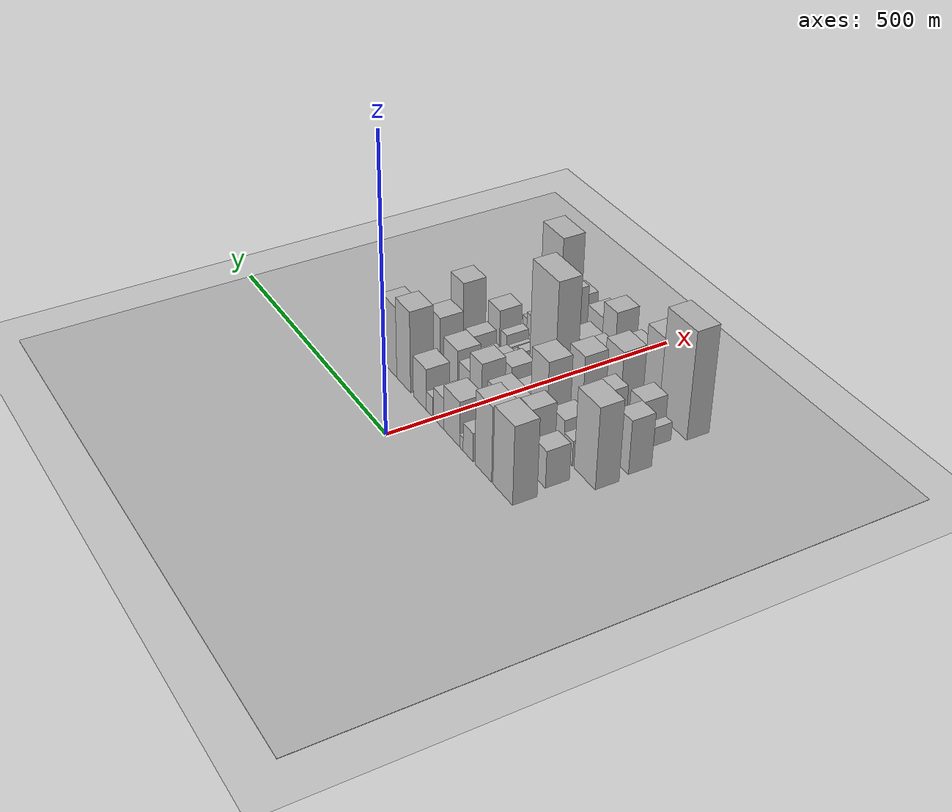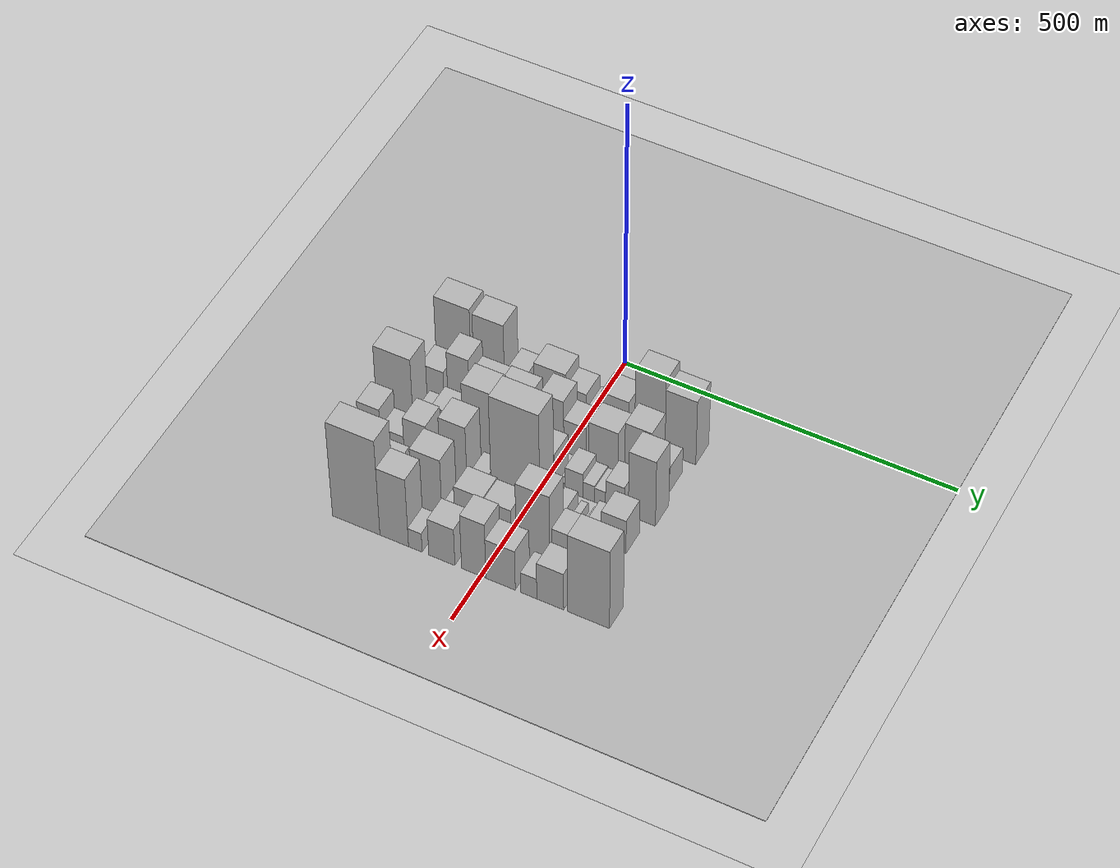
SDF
<sdf version="1.6">
 <world name="default">
  <include><name>ground_plane_1</name><uri>model://HANNAS_ground_plane</uri></include>
  <include>
   <name>ground_plane_2</name>
   <uri>model://HANNAS_ground_plane</uri>
   <pose>100 0 0  0 0 0</pose>
  </include>
  <model name="building_23">
   <static>1</static>
   <pose>100.0000 -203.5561 0 0.000000 0.000000 0.000000</pose>
   <link name="link">
    <pose>0 0 69.00 0 0 0</pose>
    <collision name="collision"><geometry><box><size>40.0000 54.8445 138.0000</size></box></geometry></collision>
    <visual name="visual">
     <cast_shadows>0</cast_shadows>
     <geometry><box><size>40.0000 54.8445 138.0000</size></box></geometry>
     <material>
      <script>
       <uri>model://HANNAS_wall/materials/scripts</uri>
       <uri>model://HANNAS_wall/materials/textures</uri>
       <name>vrc/HANNAS_wall</name>
      </script>
     </material>
    </visual>
   </link>
  </model>
  <model name="building_24">
   <static>1</static>
   <pose>100.0000 -148.3149 0 0.000000 0.000000 0.000000</pose>
   <link name="link">
    <pose>0 0 66.00 0 0 0</pose>
    <collision name="collision"><geometry><box><size>40.0000 47.6379 132.0000</size></box></geometry></collision>
    <visual name="visual">
     <cast_shadows>0</cast_shadows>
     <geometry><box><size>40.0000 47.6379 132.0000</size></box></geometry>
     <material>
      <script>
       <uri>model://HANNAS_wall/materials/scripts</uri>
       <uri>model://HANNAS_wall/materials/textures</uri>
       <name>vrc/HANNAS_wall</name>
      </script>
     </material>
    </visual>
   </link>
  </model>
  <model name="building_25">
   <static>1</static>
   <pose>100.0000 -103.8084 0 0.000000 0.000000 0.000000</pose>
   <link name="link">
    <pose>0 0 25.50 0 0 0</pose>
    <collision name="collision"><geometry><box><size>40.0000 29.3752 51.0000</size></box></geometry></collision>
    <visual name="visual">
     <cast_shadows>0</cast_shadows>
     <geometry><box><size>40.0000 29.3752 51.0000</size></box></geometry>
     <material>
      <script>
       <uri>model://HANNAS_wall/materials/scripts</uri>
       <uri>model://HANNAS_wall/materials/textures</uri>
       <name>vrc/HANNAS_wall</name>
      </script>
     </material>
    </visual>
   </link>
  </model>
  <model name="building_26">
   <static>1</static>
   <pose>100.0000 -83.8414 0 0.000000 0.000000 0.000000</pose>
   <link name="link">
    <pose>0 0 12.00 0 0 0</pose>
    <collision name="collision"><geometry><box><size>40.0000 10.5588 24.0000</size></box></geometry></collision>
    <visual name="visual">
     <cast_shadows>0</cast_shadows>
     <geometry><box><size>40.0000 10.5588 24.0000</size></box></geometry>
     <material>
      <script>
       <uri>model://HANNAS_wall/materials/scripts</uri>
       <uri>model://HANNAS_wall/materials/textures</uri>
       <name>vrc/HANNAS_wall</name>
      </script>
     </material>
    </visual>
   </link>
  </model>
  <model name="building_27">
   <static>1</static>
   <pose>100.0000 -54.4065 0 0.000000 0.000000 0.000000</pose>
   <link name="link">
    <pose>0 0 40.50 0 0 0</pose>
    <collision name="collision"><geometry><box><size>40.0000 48.3110 81.0000</size></box></geometry></collision>
    <visual name="visual">
     <cast_shadows>0</cast_shadows>
     <geometry><box><size>40.0000 48.3110 81.0000</size></box></geometry>
     <material>
      <script>
       <uri>model://HANNAS_wall/materials/scripts</uri>
       <uri>model://HANNAS_wall/materials/textures</uri>
       <name>vrc/HANNAS_wall</name>
      </script>
     </material>
    </visual>
   </link>
  </model>
  <model name="building_28">
   <static>1</static>
   <pose>100.0000 -14.4142 0 0.000000 0.000000 0.000000</pose>
   <link name="link">
    <pose>0 0 28.50 0 0 0</pose>
    <collision name="collision"><geometry><box><size>40.0000 31.6736 57.0000</size></box></geometry></collision>
    <visual name="visual">
     <cast_shadows>0</cast_shadows>
     <geometry><box><size>40.0000 31.6736 57.0000</size></box></geometry>
     <material>
      <script>
       <uri>model://HANNAS_wall/materials/scripts</uri>
       <uri>model://HANNAS_wall/materials/textures</uri>
       <name>vrc/HANNAS_wall</name>
      </script>
     </material>
    </visual>
   </link>
  </model>
  <model name="building_29">
   <static>1</static>
   <pose>100.0000 14.0344 0 0.000000 0.000000 0.000000</pose>
   <link name="link">
    <pose>0 0 18.00 0 0 0</pose>
    <collision name="collision"><geometry><box><size>40.0000 19.2237 36.0000</size></box></geometry></collision>
    <visual name="visual">
     <cast_shadows>0</cast_shadows>
     <geometry><box><size>40.0000 19.2237 36.0000</size></box></geometry>
     <material>
      <script>
       <uri>model://HANNAS_wall/materials/scripts</uri>
       <uri>model://HANNAS_wall/materials/textures</uri>
       <name>vrc/HANNAS_wall</name>
      </script>
     </material>
    </visual>
   </link>
  </model>
  <model name="building_30">
   <static>1</static>
   <pose>100.0000 44.7785 0 0.000000 0.000000 0.000000</pose>
   <link name="link">
    <pose>0 0 37.50 0 0 0</pose>
    <collision name="collision"><geometry><box><size>40.0000 42.2645 75.0000</size></box></geometry></collision>
    <visual name="visual">
     <cast_shadows>0</cast_shadows>
     <geometry><box><size>40.0000 42.2645 75.0000</size></box></geometry>
     <material>
      <script>
       <uri>model://HANNAS_wall/materials/scripts</uri>
       <uri>model://HANNAS_wall/materials/textures</uri>
       <name>vrc/HANNAS_wall</name>
      </script>
     </material>
    </visual>
   </link>
  </model>
  <model name="building_31">
   <static>1</static>
   <pose>100.0000 97.7026 0 0.000000 0.000000 0.000000</pose>
   <link name="link">
    <pose>0 0 73.50 0 0 0</pose>
    <collision name="collision"><geometry><box><size>40.0000 45.5837 147.0000</size></box></geometry></collision>
    <visual name="visual">
     <cast_shadows>0</cast_shadows>
     <geometry><box><size>40.0000 45.5837 147.0000</size></box></geometry>
     <material>
      <script>
       <uri>model://HANNAS_wall/materials/scripts</uri>
       <uri>model://HANNAS_wall/materials/textures</uri>
       <name>vrc/HANNAS_wall</name>
      </script>
     </material>
    </visual>
   </link>
  </model>
  <model name="building_32">
   <static>1</static>
   <pose>100.0000 143.7222 0 0.000000 0.000000 0.000000</pose>
   <link name="link">
    <pose>0 0 64.50 0 0 0</pose>
    <collision name="collision"><geometry><box><size>40.0000 46.4555 129.0000</size></box></geometry></collision>
    <visual name="visual">
     <cast_shadows>0</cast_shadows>
     <geometry><box><size>40.0000 46.4555 129.0000</size></box></geometry>
     <material>
      <script>
       <uri>model://HANNAS_wall/materials/scripts</uri>
       <uri>model://HANNAS_wall/materials/textures</uri>
       <name>vrc/HANNAS_wall</name>
      </script>
     </material>
    </visual>
   </link>
  </model>
  <model name="building_79">
   <static>1</static>
   <pose>160.0000 -203.1343 0 0.000000 0.000000 0.000000</pose>
   <link name="link">
    <pose>0 0 33.00 0 0 0</pose>
    <collision name="collision"><geometry><box><size>40.0000 34.5544 66.0000</size></box></geometry></collision>
    <visual name="visual">
     <cast_shadows>0</cast_shadows>
     <geometry><box><size>40.0000 34.5544 66.0000</size></box></geometry>
     <material>
      <script>
       <uri>model://HANNAS_wall/materials/scripts</uri>
       <uri>model://HANNAS_wall/materials/textures</uri>
       <name>vrc/HANNAS_wall</name>
      </script>
     </material>
    </visual>
   </link>
  </model>
  <model name="building_80">
   <static>1</static>
   <pose>160.0000 -162.9978 0 0.000000 0.000000 0.000000</pose>
   <link name="link">
    <pose>0 0 55.50 0 0 0</pose>
    <collision name="collision"><geometry><box><size>40.0000 33.7186 111.0000</size></box></geometry></collision>
    <visual name="visual">
     <cast_shadows>0</cast_shadows>
     <geometry><box><size>40.0000 33.7186 111.0000</size></box></geometry>
     <material>
      <script>
       <uri>model://HANNAS_wall/materials/scripts</uri>
       <uri>model://HANNAS_wall/materials/textures</uri>
       <name>vrc/HANNAS_wall</name>
      </script>
     </material>
    </visual>
   </link>
  </model>
  <model name="building_81">
   <static>1</static>
   <pose>160.0000 -123.7982 0 0.000000 0.000000 0.000000</pose>
   <link name="link">
    <pose>0 0 40.50 0 0 0</pose>
    <collision name="collision"><geometry><box><size>40.0000 44.6806 81.0000</size></box></geometry></collision>
    <visual name="visual">
     <cast_shadows>0</cast_shadows>
     <geometry><box><size>40.0000 44.6806 81.0000</size></box></geometry>
     <material>
      <script>
       <uri>model://HANNAS_wall/materials/scripts</uri>
       <uri>model://HANNAS_wall/materials/textures</uri>
       <name>vrc/HANNAS_wall</name>
      </script>
     </material>
    </visual>
   </link>
  </model>
  <model name="building_82">
   <static>1</static>
   <pose>160.0000 -77.8665 0 0.000000 0.000000 0.000000</pose>
   <link name="link">
    <pose>0 0 42.00 0 0 0</pose>
    <collision name="collision"><geometry><box><size>40.0000 47.1828 84.0000</size></box></geometry></collision>
    <visual name="visual">
     <cast_shadows>0</cast_shadows>
     <geometry><box><size>40.0000 47.1828 84.0000</size></box></geometry>
     <material>
      <script>
       <uri>model://HANNAS_wall/materials/scripts</uri>
       <uri>model://HANNAS_wall/materials/textures</uri>
       <name>vrc/HANNAS_wall</name>
      </script>
     </material>
    </visual>
   </link>
  </model>
  <model name="building_83">
   <static>1</static>
   <pose>160.0000 -45.9509 0 0.000000 0.000000 0.000000</pose>
   <link name="link">
    <pose>0 0 15.00 0 0 0</pose>
    <collision name="collision"><geometry><box><size>40.0000 16.6484 30.0000</size></box></geometry></collision>
    <visual name="visual">
     <cast_shadows>0</cast_shadows>
     <geometry><box><size>40.0000 16.6484 30.0000</size></box></geometry>
     <material>
      <script>
       <uri>model://HANNAS_wall/materials/scripts</uri>
       <uri>model://HANNAS_wall/materials/textures</uri>
       <name>vrc/HANNAS_wall</name>
      </script>
     </material>
    </visual>
   </link>
  </model>
  <model name="building_84">
   <static>1</static>
   <pose>160.0000 -19.8126 0 0.000000 0.000000 0.000000</pose>
   <link name="link">
    <pose>0 0 51.00 0 0 0</pose>
    <collision name="collision"><geometry><box><size>40.0000 35.6282 102.0000</size></box></geometry></collision>
    <visual name="visual">
     <cast_shadows>0</cast_shadows>
     <geometry><box><size>40.0000 35.6282 102.0000</size></box></geometry>
     <material>
      <script>
       <uri>model://HANNAS_wall/materials/scripts</uri>
       <uri>model://HANNAS_wall/materials/textures</uri>
       <name>vrc/HANNAS_wall</name>
      </script>
     </material>
    </visual>
   </link>
  </model>
  <model name="building_85">
   <static>1</static>
   <pose>160.0000 14.9345 0 0.000000 0.000000 0.000000</pose>
   <link name="link">
    <pose>0 0 33.00 0 0 0</pose>
    <collision name="collision"><geometry><box><size>40.0000 33.8661 66.0000</size></box></geometry></collision>
    <visual name="visual">
     <cast_shadows>0</cast_shadows>
     <geometry><box><size>40.0000 33.8661 66.0000</size></box></geometry>
     <material>
      <script>
       <uri>model://HANNAS_wall/materials/scripts</uri>
       <uri>model://HANNAS_wall/materials/textures</uri>
       <name>vrc/HANNAS_wall</name>
      </script>
     </material>
    </visual>
   </link>
  </model>
  <model name="building_86">
   <static>1</static>
   <pose>160.0000 58.0895 0 0.000000 0.000000 0.000000</pose>
   <link name="link">
    <pose>0 0 40.50 0 0 0</pose>
    <collision name="collision"><geometry><box><size>40.0000 44.4440 81.0000</size></box></geometry></collision>
    <visual name="visual">
     <cast_shadows>0</cast_shadows>
     <geometry><box><size>40.0000 44.4440 81.0000</size></box></geometry>
     <material>
      <script>
       <uri>model://HANNAS_wall/materials/scripts</uri>
       <uri>model://HANNAS_wall/materials/textures</uri>
       <name>vrc/HANNAS_wall</name>
      </script>
     </material>
    </visual>
   </link>
  </model>
  <model name="building_87">
   <static>1</static>
   <pose>160.0000 110.2341 0 0.000000 0.000000 0.000000</pose>
   <link name="link">
    <pose>0 0 54.00 0 0 0</pose>
    <collision name="collision"><geometry><box><size>40.0000 39.8451 108.0000</size></box></geometry></collision>
    <visual name="visual">
     <cast_shadows>0</cast_shadows>
     <geometry><box><size>40.0000 39.8451 108.0000</size></box></geometry>
     <material>
      <script>
       <uri>model://HANNAS_wall/materials/scripts</uri>
       <uri>model://HANNAS_wall/materials/textures</uri>
       <name>vrc/HANNAS_wall</name>
      </script>
     </material>
    </visual>
   </link>
  </model>
  <model name="building_88">
   <static>1</static>
   <pose>160.0000 143.5494 0 0.000000 0.000000 0.000000</pose>
   <link name="link">
    <pose>0 0 25.50 0 0 0</pose>
    <collision name="collision"><geometry><box><size>40.0000 26.7856 51.0000</size></box></geometry></collision>
    <visual name="visual">
     <cast_shadows>0</cast_shadows>
     <geometry><box><size>40.0000 26.7856 51.0000</size></box></geometry>
     <material>
      <script>
       <uri>model://HANNAS_wall/materials/scripts</uri>
       <uri>model://HANNAS_wall/materials/textures</uri>
       <name>vrc/HANNAS_wall</name>
      </script>
     </material>
    </visual>
   </link>
  </model>
  <model name="building_134">
   <static>1</static>
   <pose>220.0000 -229.0672 0 0.000000 0.000000 0.000000</pose>
   <link name="link">
    <pose>0 0 72.00 0 0 0</pose>
    <collision name="collision"><geometry><box><size>40.0000 56.5603 144.0000</size></box></geometry></collision>
    <visual name="visual">
     <cast_shadows>0</cast_shadows>
     <geometry><box><size>40.0000 56.5603 144.0000</size></box></geometry>
     <material>
      <script>
       <uri>model://HANNAS_wall/materials/scripts</uri>
       <uri>model://HANNAS_wall/materials/textures</uri>
       <name>vrc/HANNAS_wall</name>
      </script>
     </material>
    </visual>
   </link>
  </model>
  <model name="building_135">
   <static>1</static>
   <pose>220.0000 -183.6603 0 0.000000 0.000000 0.000000</pose>
   <link name="link">
    <pose>0 0 22.50 0 0 0</pose>
    <collision name="collision"><geometry><box><size>40.0000 24.2533 45.0000</size></box></geometry></collision>
    <visual name="visual">
     <cast_shadows>0</cast_shadows>
     <geometry><box><size>40.0000 24.2533 45.0000</size></box></geometry>
     <material>
      <script>
       <uri>model://HANNAS_wall/materials/scripts</uri>
       <uri>model://HANNAS_wall/materials/textures</uri>
       <name>vrc/HANNAS_wall</name>
      </script>
     </material>
    </visual>
   </link>
  </model>
  <model name="building_136">
   <static>1</static>
   <pose>220.0000 -152.7393 0 0.000000 0.000000 0.000000</pose>
   <link name="link">
    <pose>0 0 33.00 0 0 0</pose>
    <collision name="collision"><geometry><box><size>40.0000 37.5887 66.0000</size></box></geometry></collision>
    <visual name="visual">
     <cast_shadows>0</cast_shadows>
     <geometry><box><size>40.0000 37.5887 66.0000</size></box></geometry>
     <material>
      <script>
       <uri>model://HANNAS_wall/materials/scripts</uri>
       <uri>model://HANNAS_wall/materials/textures</uri>
       <name>vrc/HANNAS_wall</name>
      </script>
     </material>
    </visual>
   </link>
  </model>
  <model name="building_137">
   <static>1</static>
   <pose>220.0000 -100.8049 0 0.000000 0.000000 0.000000</pose>
   <link name="link">
    <pose>0 0 69.00 0 0 0</pose>
    <collision name="collision"><geometry><box><size>40.0000 46.2803 138.0000</size></box></geometry></collision>
    <visual name="visual">
     <cast_shadows>0</cast_shadows>
     <geometry><box><size>40.0000 46.2803 138.0000</size></box></geometry>
     <material>
      <script>
       <uri>model://HANNAS_wall/materials/scripts</uri>
       <uri>model://HANNAS_wall/materials/textures</uri>
       <name>vrc/HANNAS_wall</name>
      </script>
     </material>
    </visual>
   </link>
  </model>
  <model name="building_138">
   <static>1</static>
   <pose>220.0000 -58.5885 0 0.000000 0.000000 0.000000</pose>
   <link name="link">
    <pose>0 0 18.00 0 0 0</pose>
    <collision name="collision"><geometry><box><size>40.0000 18.1525 36.0000</size></box></geometry></collision>
    <visual name="visual">
     <cast_shadows>0</cast_shadows>
     <geometry><box><size>40.0000 18.1525 36.0000</size></box></geometry>
     <material>
      <script>
       <uri>model://HANNAS_wall/materials/scripts</uri>
       <uri>model://HANNAS_wall/materials/textures</uri>
       <name>vrc/HANNAS_wall</name>
      </script>
     </material>
    </visual>
   </link>
  </model>
  <model name="building_139">
   <static>1</static>
   <pose>220.0000 -33.2629 0 0.000000 0.000000 0.000000</pose>
   <link name="link">
    <pose>0 0 21.00 0 0 0</pose>
    <collision name="collision"><geometry><box><size>40.0000 22.4988 42.0000</size></box></geometry></collision>
    <visual name="visual">
     <cast_shadows>0</cast_shadows>
     <geometry><box><size>40.0000 22.4988 42.0000</size></box></geometry>
     <material>
      <script>
       <uri>model://HANNAS_wall/materials/scripts</uri>
       <uri>model://HANNAS_wall/materials/textures</uri>
       <name>vrc/HANNAS_wall</name>
      </script>
     </material>
    </visual>
   </link>
  </model>
  <model name="building_140">
   <static>1</static>
   <pose>220.0000 -3.2694 0 0.000000 0.000000 0.000000</pose>
   <link name="link">
    <pose>0 0 33.00 0 0 0</pose>
    <collision name="collision"><geometry><box><size>40.0000 37.4882 66.0000</size></box></geometry></collision>
    <visual name="visual">
     <cast_shadows>0</cast_shadows>
     <geometry><box><size>40.0000 37.4882 66.0000</size></box></geometry>
     <material>
      <script>
       <uri>model://HANNAS_wall/materials/scripts</uri>
       <uri>model://HANNAS_wall/materials/textures</uri>
       <name>vrc/HANNAS_wall</name>
      </script>
     </material>
    </visual>
   </link>
  </model>
  <model name="building_141">
   <static>1</static>
   <pose>220.0000 27.8396 0 0.000000 0.000000 0.000000</pose>
   <link name="link">
    <pose>0 0 7.50 0 0 0</pose>
    <collision name="collision"><geometry><box><size>40.0000 6.7298 15.0000</size></box></geometry></collision>
    <visual name="visual">
     <cast_shadows>0</cast_shadows>
     <geometry><box><size>40.0000 6.7298 15.0000</size></box></geometry>
     <material>
      <script>
       <uri>model://HANNAS_wall/materials/scripts</uri>
       <uri>model://HANNAS_wall/materials/textures</uri>
       <name>vrc/HANNAS_wall</name>
      </script>
     </material>
    </visual>
   </link>
  </model>
  <model name="building_142">
   <static>1</static>
   <pose>220.0000 44.4099 0 0.000000 0.000000 0.000000</pose>
   <link name="link">
    <pose>0 0 24.00 0 0 0</pose>
    <collision name="collision"><geometry><box><size>40.0000 26.4106 48.0000</size></box></geometry></collision>
    <visual name="visual">
     <cast_shadows>0</cast_shadows>
     <geometry><box><size>40.0000 26.4106 48.0000</size></box></geometry>
     <material>
      <script>
       <uri>model://HANNAS_wall/materials/scripts</uri>
       <uri>model://HANNAS_wall/materials/textures</uri>
       <name>vrc/HANNAS_wall</name>
      </script>
     </material>
    </visual>
   </link>
  </model>
  <model name="building_143">
   <static>1</static>
   <pose>220.0000 66.5911 0 0.000000 0.000000 0.000000</pose>
   <link name="link">
    <pose>0 0 16.50 0 0 0</pose>
    <collision name="collision"><geometry><box><size>40.0000 17.9517 33.0000</size></box></geometry></collision>
    <visual name="visual">
     <cast_shadows>0</cast_shadows>
     <geometry><box><size>40.0000 17.9517 33.0000</size></box></geometry>
     <material>
      <script>
       <uri>model://HANNAS_wall/materials/scripts</uri>
       <uri>model://HANNAS_wall/materials/textures</uri>
       <name>vrc/HANNAS_wall</name>
      </script>
     </material>
    </visual>
   </link>
  </model>
  <model name="building_144">
   <static>1</static>
   <pose>220.0000 83.6626 0 0.000000 0.000000 0.000000</pose>
   <link name="link">
    <pose>0 0 15.00 0 0 0</pose>
    <collision name="collision"><geometry><box><size>40.0000 16.1914 30.0000</size></box></geometry></collision>
    <visual name="visual">
     <cast_shadows>0</cast_shadows>
     <geometry><box><size>40.0000 16.1914 30.0000</size></box></geometry>
     <material>
      <script>
       <uri>model://HANNAS_wall/materials/scripts</uri>
       <uri>model://HANNAS_wall/materials/textures</uri>
       <name>vrc/HANNAS_wall</name>
      </script>
     </material>
    </visual>
   </link>
  </model>
  <model name="building_145">
   <static>1</static>
   <pose>220.0000 105.7964 0 0.000000 0.000000 0.000000</pose>
   <link name="link">
    <pose>0 0 27.00 0 0 0</pose>
    <collision name="collision"><geometry><box><size>40.0000 28.0761 54.0000</size></box></geometry></collision>
    <visual name="visual">
     <cast_shadows>0</cast_shadows>
     <geometry><box><size>40.0000 28.0761 54.0000</size></box></geometry>
     <material>
      <script>
       <uri>model://HANNAS_wall/materials/scripts</uri>
       <uri>model://HANNAS_wall/materials/textures</uri>
       <name>vrc/HANNAS_wall</name>
      </script>
     </material>
    </visual>
   </link>
  </model>
  <model name="building_146">
   <static>1</static>
   <pose>220.0000 145.9951 0 0.000000 0.000000 0.000000</pose>
   <link name="link">
    <pose>0 0 66.00 0 0 0</pose>
    <collision name="collision"><geometry><box><size>40.0000 40.3213 132.0000</size></box></geometry></collision>
    <visual name="visual">
     <cast_shadows>0</cast_shadows>
     <geometry><box><size>40.0000 40.3213 132.0000</size></box></geometry>
     <material>
      <script>
       <uri>model://HANNAS_wall/materials/scripts</uri>
       <uri>model://HANNAS_wall/materials/textures</uri>
       <name>vrc/HANNAS_wall</name>
      </script>
     </material>
    </visual>
   </link>
  </model>
  <model name="building_188">
   <static>1</static>
   <pose>280.0000 -233.9163 0 0.000000 0.000000 0.000000</pose>
   <link name="link">
    <pose>0 0 48.00 0 0 0</pose>
    <collision name="collision"><geometry><box><size>40.0000 34.2539 96.0000</size></box></geometry></collision>
    <visual name="visual">
     <cast_shadows>0</cast_shadows>
     <geometry><box><size>40.0000 34.2539 96.0000</size></box></geometry>
     <material>
      <script>
       <uri>model://HANNAS_wall/materials/scripts</uri>
       <uri>model://HANNAS_wall/materials/textures</uri>
       <name>vrc/HANNAS_wall</name>
      </script>
     </material>
    </visual>
   </link>
  </model>
  <model name="building_189">
   <static>1</static>
   <pose>280.0000 -198.8603 0 0.000000 0.000000 0.000000</pose>
   <link name="link">
    <pose>0 0 30.00 0 0 0</pose>
    <collision name="collision"><geometry><box><size>40.0000 35.8582 60.0000</size></box></geometry></collision>
    <visual name="visual">
     <cast_shadows>0</cast_shadows>
     <geometry><box><size>40.0000 35.8582 60.0000</size></box></geometry>
     <material>
      <script>
       <uri>model://HANNAS_wall/materials/scripts</uri>
       <uri>model://HANNAS_wall/materials/textures</uri>
       <name>vrc/HANNAS_wall</name>
      </script>
     </material>
    </visual>
   </link>
  </model>
  <model name="building_190">
   <static>1</static>
   <pose>280.0000 -163.6658 0 0.000000 0.000000 0.000000</pose>
   <link name="link">
    <pose>0 0 49.50 0 0 0</pose>
    <collision name="collision"><geometry><box><size>40.0000 34.5308 99.0000</size></box></geometry></collision>
    <visual name="visual">
     <cast_shadows>0</cast_shadows>
     <geometry><box><size>40.0000 34.5308 99.0000</size></box></geometry>
     <material>
      <script>
       <uri>model://HANNAS_wall/materials/scripts</uri>
       <uri>model://HANNAS_wall/materials/textures</uri>
       <name>vrc/HANNAS_wall</name>
      </script>
     </material>
    </visual>
   </link>
  </model>
  <model name="building_191">
   <static>1</static>
   <pose>280.0000 -132.2129 0 0.000000 0.000000 0.000000</pose>
   <link name="link">
    <pose>0 0 13.50 0 0 0</pose>
    <collision name="collision"><geometry><box><size>40.0000 12.3750 27.0000</size></box></geometry></collision>
    <visual name="visual">
     <cast_shadows>0</cast_shadows>
     <geometry><box><size>40.0000 12.3750 27.0000</size></box></geometry>
     <material>
      <script>
       <uri>model://HANNAS_wall/materials/scripts</uri>
       <uri>model://HANNAS_wall/materials/textures</uri>
       <name>vrc/HANNAS_wall</name>
      </script>
     </material>
    </visual>
   </link>
  </model>
  <model name="building_192">
   <static>1</static>
   <pose>280.0000 -105.7558 0 0.000000 0.000000 0.000000</pose>
   <link name="link">
    <pose>0 0 64.50 0 0 0</pose>
    <collision name="collision"><geometry><box><size>40.0000 40.5392 129.0000</size></box></geometry></collision>
    <visual name="visual">
     <cast_shadows>0</cast_shadows>
     <geometry><box><size>40.0000 40.5392 129.0000</size></box></geometry>
     <material>
      <script>
       <uri>model://HANNAS_wall/materials/scripts</uri>
       <uri>model://HANNAS_wall/materials/textures</uri>
       <name>vrc/HANNAS_wall</name>
      </script>
     </material>
    </visual>
   </link>
  </model>
  <model name="building_193">
   <static>1</static>
   <pose>280.0000 -68.1076 0 0.000000 0.000000 0.000000</pose>
   <link name="link">
    <pose>0 0 21.00 0 0 0</pose>
    <collision name="collision"><geometry><box><size>40.0000 24.7573 42.0000</size></box></geometry></collision>
    <visual name="visual">
     <cast_shadows>0</cast_shadows>
     <geometry><box><size>40.0000 24.7573 42.0000</size></box></geometry>
     <material>
      <script>
       <uri>model://HANNAS_wall/materials/scripts</uri>
       <uri>model://HANNAS_wall/materials/textures</uri>
       <name>vrc/HANNAS_wall</name>
      </script>
     </material>
    </visual>
   </link>
  </model>
  <model name="building_194">
   <static>1</static>
   <pose>280.0000 -11.9997 0 0.000000 0.000000 0.000000</pose>
   <link name="link">
    <pose>0 0 106.50 0 0 0</pose>
    <collision name="collision"><geometry><box><size>40.0000 73.4585 213.0000</size></box></geometry></collision>
    <visual name="visual">
     <cast_shadows>0</cast_shadows>
     <geometry><box><size>40.0000 73.4585 213.0000</size></box></geometry>
     <material>
      <script>
       <uri>model://HANNAS_wall/materials/scripts</uri>
       <uri>model://HANNAS_wall/materials/textures</uri>
       <name>vrc/HANNAS_wall</name>
      </script>
     </material>
    </visual>
   </link>
  </model>
  <model name="building_195">
   <static>1</static>
   <pose>280.0000 33.3372 0 0.000000 0.000000 0.000000</pose>
   <link name="link">
    <pose>0 0 15.00 0 0 0</pose>
    <collision name="collision"><geometry><box><size>40.0000 17.2152 30.0000</size></box></geometry></collision>
    <visual name="visual">
     <cast_shadows>0</cast_shadows>
     <geometry><box><size>40.0000 17.2152 30.0000</size></box></geometry>
     <material>
      <script>
       <uri>model://HANNAS_wall/materials/scripts</uri>
       <uri>model://HANNAS_wall/materials/textures</uri>
       <name>vrc/HANNAS_wall</name>
      </script>
     </material>
    </visual>
   </link>
  </model>
  <model name="building_196">
   <static>1</static>
   <pose>280.0000 51.4270 0 0.000000 0.000000 0.000000</pose>
   <link name="link">
    <pose>0 0 18.00 0 0 0</pose>
    <collision name="collision"><geometry><box><size>40.0000 18.9645 36.0000</size></box></geometry></collision>
    <visual name="visual">
     <cast_shadows>0</cast_shadows>
     <geometry><box><size>40.0000 18.9645 36.0000</size></box></geometry>
     <material>
      <script>
       <uri>model://HANNAS_wall/materials/scripts</uri>
       <uri>model://HANNAS_wall/materials/textures</uri>
       <name>vrc/HANNAS_wall</name>
      </script>
     </material>
    </visual>
   </link>
  </model>
  <model name="building_197">
   <static>1</static>
   <pose>280.0000 71.0855 0 0.000000 0.000000 0.000000</pose>
   <link name="link">
    <pose>0 0 10.50 0 0 0</pose>
    <collision name="collision"><geometry><box><size>40.0000 10.3524 21.0000</size></box></geometry></collision>
    <visual name="visual">
     <cast_shadows>0</cast_shadows>
     <geometry><box><size>40.0000 10.3524 21.0000</size></box></geometry>
     <material>
      <script>
       <uri>model://HANNAS_wall/materials/scripts</uri>
       <uri>model://HANNAS_wall/materials/textures</uri>
       <name>vrc/HANNAS_wall</name>
      </script>
     </material>
    </visual>
   </link>
  </model>
  <model name="building_198">
   <static>1</static>
   <pose>280.0000 89.3489 0 0.000000 0.000000 0.000000</pose>
   <link name="link">
    <pose>0 0 9.00 0 0 0</pose>
    <collision name="collision"><geometry><box><size>40.0000 8.1743 18.0000</size></box></geometry></collision>
    <visual name="visual">
     <cast_shadows>0</cast_shadows>
     <geometry><box><size>40.0000 8.1743 18.0000</size></box></geometry>
     <material>
      <script>
       <uri>model://HANNAS_wall/materials/scripts</uri>
       <uri>model://HANNAS_wall/materials/textures</uri>
       <name>vrc/HANNAS_wall</name>
      </script>
     </material>
    </visual>
   </link>
  </model>
  <model name="building_199">
   <static>1</static>
   <pose>280.0000 102.7350 0 0.000000 0.000000 0.000000</pose>
   <link name="link">
    <pose>0 0 18.00 0 0 0</pose>
    <collision name="collision"><geometry><box><size>40.0000 18.5980 36.0000</size></box></geometry></collision>
    <visual name="visual">
     <cast_shadows>0</cast_shadows>
     <geometry><box><size>40.0000 18.5980 36.0000</size></box></geometry>
     <material>
      <script>
       <uri>model://HANNAS_wall/materials/scripts</uri>
       <uri>model://HANNAS_wall/materials/textures</uri>
       <name>vrc/HANNAS_wall</name>
      </script>
     </material>
    </visual>
   </link>
  </model>
  <model name="building_200">
   <static>1</static>
   <pose>280.0000 134.3009 0 0.000000 0.000000 0.000000</pose>
   <link name="link">
    <pose>0 0 34.50 0 0 0</pose>
    <collision name="collision"><geometry><box><size>40.0000 36.5337 69.0000</size></box></geometry></collision>
    <visual name="visual">
     <cast_shadows>0</cast_shadows>
     <geometry><box><size>40.0000 36.5337 69.0000</size></box></geometry>
     <material>
      <script>
       <uri>model://HANNAS_wall/materials/scripts</uri>
       <uri>model://HANNAS_wall/materials/textures</uri>
       <name>vrc/HANNAS_wall</name>
      </script>
     </material>
    </visual>
   </link>
  </model>
  <model name="building_249">
   <static>1</static>
   <pose>340.0000 -204.5132 0 0.000000 0.000000 0.000000</pose>
   <link name="link">
    <pose>0 0 16.50 0 0 0</pose>
    <collision name="collision"><geometry><box><size>40.0000 16.5049 33.0000</size></box></geometry></collision>
    <visual name="visual">
     <cast_shadows>0</cast_shadows>
     <geometry><box><size>40.0000 16.5049 33.0000</size></box></geometry>
     <material>
      <script>
       <uri>model://HANNAS_wall/materials/scripts</uri>
       <uri>model://HANNAS_wall/materials/textures</uri>
       <name>vrc/HANNAS_wall</name>
      </script>
     </material>
    </visual>
   </link>
  </model>
  <model name="building_250">
   <static>1</static>
   <pose>340.0000 -178.1839 0 0.000000 0.000000 0.000000</pose>
   <link name="link">
    <pose>0 0 36.00 0 0 0</pose>
    <collision name="collision"><geometry><box><size>40.0000 36.1538 72.0000</size></box></geometry></collision>
    <visual name="visual">
     <cast_shadows>0</cast_shadows>
     <geometry><box><size>40.0000 36.1538 72.0000</size></box></geometry>
     <material>
      <script>
       <uri>model://HANNAS_wall/materials/scripts</uri>
       <uri>model://HANNAS_wall/materials/textures</uri>
       <name>vrc/HANNAS_wall</name>
      </script>
     </material>
    </visual>
   </link>
  </model>
  <model name="building_251">
   <static>1</static>
   <pose>340.0000 -145.2245 0 0.000000 0.000000 0.000000</pose>
   <link name="link">
    <pose>0 0 10.50 0 0 0</pose>
    <collision name="collision"><geometry><box><size>40.0000 9.7649 21.0000</size></box></geometry></collision>
    <visual name="visual">
     <cast_shadows>0</cast_shadows>
     <geometry><box><size>40.0000 9.7649 21.0000</size></box></geometry>
     <material>
      <script>
       <uri>model://HANNAS_wall/materials/scripts</uri>
       <uri>model://HANNAS_wall/materials/textures</uri>
       <name>vrc/HANNAS_wall</name>
      </script>
     </material>
    </visual>
   </link>
  </model>
  <model name="building_252">
   <static>1</static>
   <pose>340.0000 -113.6214 0 0.000000 0.000000 0.000000</pose>
   <link name="link">
    <pose>0 0 61.50 0 0 0</pose>
    <collision name="collision"><geometry><box><size>40.0000 45.4413 123.0000</size></box></geometry></collision>
    <visual name="visual">
     <cast_shadows>0</cast_shadows>
     <geometry><box><size>40.0000 45.4413 123.0000</size></box></geometry>
     <material>
      <script>
       <uri>model://HANNAS_wall/materials/scripts</uri>
       <uri>model://HANNAS_wall/materials/textures</uri>
       <name>vrc/HANNAS_wall</name>
      </script>
     </material>
    </visual>
   </link>
  </model>
  <model name="building_253">
   <static>1</static>
   <pose>340.0000 -81.2483 0 0.000000 0.000000 0.000000</pose>
   <link name="link">
    <pose>0 0 16.50 0 0 0</pose>
    <collision name="collision"><geometry><box><size>40.0000 19.3048 33.0000</size></box></geometry></collision>
    <visual name="visual">
     <cast_shadows>0</cast_shadows>
     <geometry><box><size>40.0000 19.3048 33.0000</size></box></geometry>
     <material>
      <script>
       <uri>model://HANNAS_wall/materials/scripts</uri>
       <uri>model://HANNAS_wall/materials/textures</uri>
       <name>vrc/HANNAS_wall</name>
      </script>
     </material>
    </visual>
   </link>
  </model>
  <model name="building_254">
   <static>1</static>
   <pose>340.0000 -49.6269 0 0.000000 0.000000 0.000000</pose>
   <link name="link">
    <pose>0 0 40.50 0 0 0</pose>
    <collision name="collision"><geometry><box><size>40.0000 43.9381 81.0000</size></box></geometry></collision>
    <visual name="visual">
     <cast_shadows>0</cast_shadows>
     <geometry><box><size>40.0000 43.9381 81.0000</size></box></geometry>
     <material>
      <script>
       <uri>model://HANNAS_wall/materials/scripts</uri>
       <uri>model://HANNAS_wall/materials/textures</uri>
       <name>vrc/HANNAS_wall</name>
      </script>
     </material>
    </visual>
   </link>
  </model>
  <model name="building_255">
   <static>1</static>
   <pose>340.0000 -7.0949 0 0.000000 0.000000 0.000000</pose>
   <link name="link">
    <pose>0 0 39.00 0 0 0</pose>
    <collision name="collision"><geometry><box><size>40.0000 41.1258 78.0000</size></box></geometry></collision>
    <visual name="visual">
     <cast_shadows>0</cast_shadows>
     <geometry><box><size>40.0000 41.1258 78.0000</size></box></geometry>
     <material>
      <script>
       <uri>model://HANNAS_wall/materials/scripts</uri>
       <uri>model://HANNAS_wall/materials/textures</uri>
       <name>vrc/HANNAS_wall</name>
      </script>
     </material>
    </visual>
   </link>
  </model>
  <model name="building_256">
   <static>1</static>
   <pose>340.0000 17.1285 0 0.000000 0.000000 0.000000</pose>
   <link name="link">
    <pose>0 0 9.00 0 0 0</pose>
    <collision name="collision"><geometry><box><size>40.0000 7.3209 18.0000</size></box></geometry></collision>
    <visual name="visual">
     <cast_shadows>0</cast_shadows>
     <geometry><box><size>40.0000 7.3209 18.0000</size></box></geometry>
     <material>
      <script>
       <uri>model://HANNAS_wall/materials/scripts</uri>
       <uri>model://HANNAS_wall/materials/textures</uri>
       <name>vrc/HANNAS_wall</name>
      </script>
     </material>
    </visual>
   </link>
  </model>
  <model name="building_257">
   <static>1</static>
   <pose>340.0000 45.7551 0 0.000000 0.000000 0.000000</pose>
   <link name="link">
    <pose>0 0 69.00 0 0 0</pose>
    <collision name="collision"><geometry><box><size>40.0000 49.9324 138.0000</size></box></geometry></collision>
    <visual name="visual">
     <cast_shadows>0</cast_shadows>
     <geometry><box><size>40.0000 49.9324 138.0000</size></box></geometry>
     <material>
      <script>
       <uri>model://HANNAS_wall/materials/scripts</uri>
       <uri>model://HANNAS_wall/materials/textures</uri>
       <name>vrc/HANNAS_wall</name>
      </script>
     </material>
    </visual>
   </link>
  </model>
  <model name="building_258">
   <static>1</static>
   <pose>340.0000 92.9014 0 0.000000 0.000000 0.000000</pose>
   <link name="link">
    <pose>0 0 37.50 0 0 0</pose>
    <collision name="collision"><geometry><box><size>40.0000 38.3601 75.0000</size></box></geometry></collision>
    <visual name="visual">
     <cast_shadows>0</cast_shadows>
     <geometry><box><size>40.0000 38.3601 75.0000</size></box></geometry>
     <material>
      <script>
       <uri>model://HANNAS_wall/materials/scripts</uri>
       <uri>model://HANNAS_wall/materials/textures</uri>
       <name>vrc/HANNAS_wall</name>
      </script>
     </material>
    </visual>
   </link>
  </model>
  <model name="building_259">
   <static>1</static>
   <pose>340.0000 122.2684 0 0.000000 0.000000 0.000000</pose>
   <link name="link">
    <pose>0 0 19.50 0 0 0</pose>
    <collision name="collision"><geometry><box><size>40.0000 20.3740 39.0000</size></box></geometry></collision>
    <visual name="visual">
     <cast_shadows>0</cast_shadows>
     <geometry><box><size>40.0000 20.3740 39.0000</size></box></geometry>
     <material>
      <script>
       <uri>model://HANNAS_wall/materials/scripts</uri>
       <uri>model://HANNAS_wall/materials/textures</uri>
       <name>vrc/HANNAS_wall</name>
      </script>
     </material>
    </visual>
   </link>
  </model>
  <model name="building_260">
   <static>1</static>
   <pose>340.0000 138.8278 0 0.000000 0.000000 0.000000</pose>
   <link name="link">
    <pose>0 0 13.50 0 0 0</pose>
    <collision name="collision"><geometry><box><size>40.0000 12.7446 27.0000</size></box></geometry></collision>
    <visual name="visual">
     <cast_shadows>0</cast_shadows>
     <geometry><box><size>40.0000 12.7446 27.0000</size></box></geometry>
     <material>
      <script>
       <uri>model://HANNAS_wall/materials/scripts</uri>
       <uri>model://HANNAS_wall/materials/textures</uri>
       <name>vrc/HANNAS_wall</name>
      </script>
     </material>
    </visual>
   </link>
  </model>
  <model name="building_306">
   <static>1</static>
   <pose>400.0000 -188.4554 0 0.000000 0.000000 0.000000</pose>
   <link name="link">
    <pose>0 0 96.00 0 0 0</pose>
    <collision name="collision"><geometry><box><size>40.0000 72.2183 192.0000</size></box></geometry></collision>
    <visual name="visual">
     <cast_shadows>0</cast_shadows>
     <geometry><box><size>40.0000 72.2183 192.0000</size></box></geometry>
     <material>
      <script>
       <uri>model://HANNAS_wall/materials/scripts</uri>
       <uri>model://HANNAS_wall/materials/textures</uri>
       <name>vrc/HANNAS_wall</name>
      </script>
     </material>
    </visual>
   </link>
  </model>
  <model name="building_307">
   <static>1</static>
   <pose>400.0000 -130.6787 0 0.000000 0.000000 0.000000</pose>
   <link name="link">
    <pose>0 0 69.00 0 0 0</pose>
    <collision name="collision"><geometry><box><size>40.0000 43.3352 138.0000</size></box></geometry></collision>
    <visual name="visual">
     <cast_shadows>0</cast_shadows>
     <geometry><box><size>40.0000 43.3352 138.0000</size></box></geometry>
     <material>
      <script>
       <uri>model://HANNAS_wall/materials/scripts</uri>
       <uri>model://HANNAS_wall/materials/textures</uri>
       <name>vrc/HANNAS_wall</name>
      </script>
     </material>
    </visual>
   </link>
  </model>
  <model name="building_308">
   <static>1</static>
   <pose>400.0000 -98.7209 0 0.000000 0.000000 0.000000</pose>
   <link name="link">
    <pose>0 0 19.50 0 0 0</pose>
    <collision name="collision"><geometry><box><size>40.0000 20.5805 39.0000</size></box></geometry></collision>
    <visual name="visual">
     <cast_shadows>0</cast_shadows>
     <geometry><box><size>40.0000 20.5805 39.0000</size></box></geometry>
     <material>
      <script>
       <uri>model://HANNAS_wall/materials/scripts</uri>
       <uri>model://HANNAS_wall/materials/textures</uri>
       <name>vrc/HANNAS_wall</name>
      </script>
     </material>
    </visual>
   </link>
  </model>
  <model name="building_309">
   <static>1</static>
   <pose>400.0000 -58.8195 0 0.000000 0.000000 0.000000</pose>
   <link name="link">
    <pose>0 0 37.50 0 0 0</pose>
    <collision name="collision"><geometry><box><size>40.0000 39.2224 75.0000</size></box></geometry></collision>
    <visual name="visual">
     <cast_shadows>0</cast_shadows>
     <geometry><box><size>40.0000 39.2224 75.0000</size></box></geometry>
     <material>
      <script>
       <uri>model://HANNAS_wall/materials/scripts</uri>
       <uri>model://HANNAS_wall/materials/textures</uri>
       <name>vrc/HANNAS_wall</name>
      </script>
     </material>
    </visual>
   </link>
  </model>
  <model name="building_310">
   <static>1</static>
   <pose>400.0000 -10.9959 0 0.000000 0.000000 0.000000</pose>
   <link name="link">
    <pose>0 0 55.50 0 0 0</pose>
    <collision name="collision"><geometry><box><size>40.0000 36.4248 111.0000</size></box></geometry></collision>
    <visual name="visual">
     <cast_shadows>0</cast_shadows>
     <geometry><box><size>40.0000 36.4248 111.0000</size></box></geometry>
     <material>
      <script>
       <uri>model://HANNAS_wall/materials/scripts</uri>
       <uri>model://HANNAS_wall/materials/textures</uri>
       <name>vrc/HANNAS_wall</name>
      </script>
     </material>
    </visual>
   </link>
  </model>
  <model name="building_311">
   <static>1</static>
   <pose>400.0000 29.0526 0 0.000000 0.000000 0.000000</pose>
   <link name="link">
    <pose>0 0 40.50 0 0 0</pose>
    <collision name="collision"><geometry><box><size>40.0000 43.6722 81.0000</size></box></geometry></collision>
    <visual name="visual">
     <cast_shadows>0</cast_shadows>
     <geometry><box><size>40.0000 43.6722 81.0000</size></box></geometry>
     <material>
      <script>
       <uri>model://HANNAS_wall/materials/scripts</uri>
       <uri>model://HANNAS_wall/materials/textures</uri>
       <name>vrc/HANNAS_wall</name>
      </script>
     </material>
    </visual>
   </link>
  </model>
  <model name="building_312">
   <static>1</static>
   <pose>400.0000 70.7876 0 0.000000 0.000000 0.000000</pose>
   <link name="link">
    <pose>0 0 21.00 0 0 0</pose>
    <collision name="collision"><geometry><box><size>40.0000 23.7976 42.0000</size></box></geometry></collision>
    <visual name="visual">
     <cast_shadows>0</cast_shadows>
     <geometry><box><size>40.0000 23.7976 42.0000</size></box></geometry>
     <material>
      <script>
       <uri>model://HANNAS_wall/materials/scripts</uri>
       <uri>model://HANNAS_wall/materials/textures</uri>
       <name>vrc/HANNAS_wall</name>
      </script>
     </material>
    </visual>
   </link>
  </model>
  <model name="building_313">
   <static>1</static>
   <pose>400.0000 102.4656 0 0.000000 0.000000 0.000000</pose>
   <link name="link">
    <pose>0 0 37.50 0 0 0</pose>
    <collision name="collision"><geometry><box><size>40.0000 39.5585 75.0000</size></box></geometry></collision>
    <visual name="visual">
     <cast_shadows>0</cast_shadows>
     <geometry><box><size>40.0000 39.5585 75.0000</size></box></geometry>
     <material>
      <script>
       <uri>model://HANNAS_wall/materials/scripts</uri>
       <uri>model://HANNAS_wall/materials/textures</uri>
       <name>vrc/HANNAS_wall</name>
      </script>
     </material>
    </visual>
   </link>
  </model>
  <model name="building_314">
   <static>1</static>
   <pose>400.0000 158.8221 0 0.000000 0.000000 0.000000</pose>
   <link name="link">
    <pose>0 0 79.50 0 0 0</pose>
    <collision name="collision"><geometry><box><size>40.0000 61.1546 159.0000</size></box></geometry></collision>
    <visual name="visual">
     <cast_shadows>0</cast_shadows>
     <geometry><box><size>40.0000 61.1546 159.0000</size></box></geometry>
     <material>
      <script>
       <uri>model://HANNAS_wall/materials/scripts</uri>
       <uri>model://HANNAS_wall/materials/textures</uri>
       <name>vrc/HANNAS_wall</name>
      </script>
     </material>
    </visual>
   </link>
  </model>
 </world>
</sdf>
